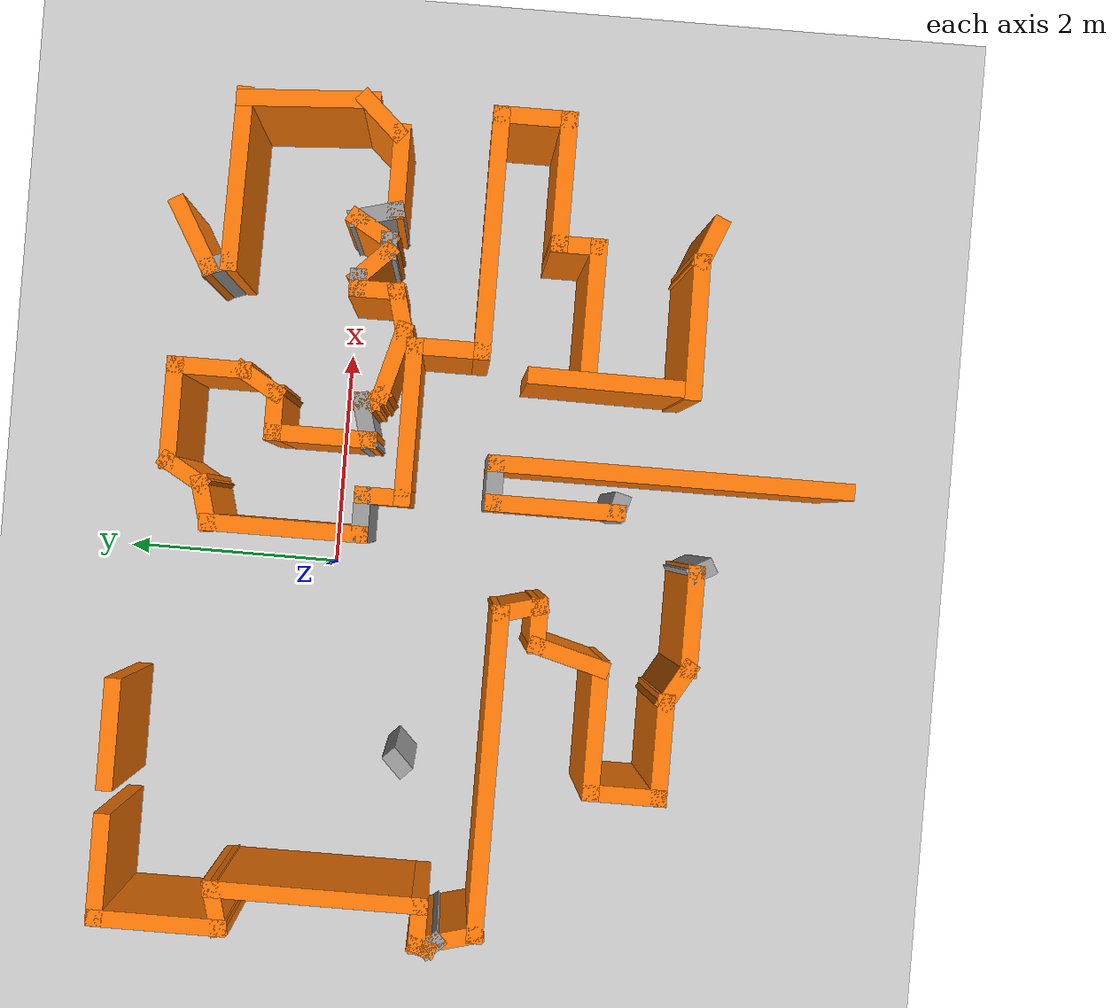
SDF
<sdf version="1.7">
 <world name="default">
  <model name="ground_plane">
   <static>1</static>
   <link name="link">
    <collision name="collision">
     <geometry><plane><normal>0 0 1</normal><size>100 100</size></plane></geometry>
     <surface>
      <contact><collide_bitmask>65535</collide_bitmask></contact>
      <friction><ode><mu>100</mu><mu2>50</mu2></ode></friction>
     </surface>
    </collision>
    <visual name="visual">
     <cast_shadows>0</cast_shadows>
     <geometry><plane><normal>0 0 1</normal><size>100 100</size></plane></geometry>
     <material>
      <script><uri>file://media/materials/scripts/gazebo.material</uri><name>Gazebo/Grey</name></script>
     </material>
    </visual>
   </link>
  </model>
  <model name="map_4">
   <pose>0.04124 -0.27835 0 0 -0 0</pose>
   <link name="Wall_104">
    <collision name="Wall_104_Collision">
     <geometry><box><size>0.493604 0.15 2.5</size></box></geometry>
     <pose>0 0 1.25 0 -0 0</pose>
    </collision>
    <visual name="Wall_104_Visual">
     <pose>0 0 1.25 0 -0 0</pose>
     <geometry><box><size>0.493604 0.15 2.5</size></box></geometry>
     <material>
      <script><uri>file://media/materials/scripts/gazebo.material</uri><name>Gazebo/Grey</name></script>
      <ambient>0.996078 0.47451 0.0196078 1</ambient>
     </material>
     <meta><layer>0</layer></meta>
    </visual>
    <pose>3.06994 -2.89171 0 0 -0 2.75556</pose>
   </link>
   <link name="Wall_105">
    <collision name="Wall_105_Collision">
     <geometry><box><size>1.29573 0.15 2.5</size></box></geometry>
     <pose>0 0 1.25 0 -0 0</pose>
    </collision>
    <visual name="Wall_105_Visual">
     <pose>0 0 1.25 0 -0 0</pose>
     <geometry><box><size>1.29573 0.15 2.5</size></box></geometry>
     <material>
      <script><uri>file://media/materials/scripts/gazebo.material</uri><name>Gazebo/Grey</name></script>
      <ambient>0.996078 0.47451 0.0196078 1</ambient>
     </material>
     <meta><layer>0</layer></meta>
    </visual>
    <pose>2.32276 -2.83463 0 0 -0 -3.12832</pose>
   </link>
   <link name="Wall_106">
    <collision name="Wall_106_Collision">
     <geometry><box><size>1.54571 0.15 2.5</size></box></geometry>
     <pose>0 0 1.25 0 -0 0</pose>
    </collision>
    <visual name="Wall_106_Visual">
     <pose>0 0 1.25 0 -0 0</pose>
     <geometry><box><size>1.54571 0.15 2.5</size></box></geometry>
     <material>
      <script><uri>file://media/materials/scripts/gazebo.material</uri><name>Gazebo/Grey</name></script>
      <ambient>0.996078 0.47451 0.0196078 1</ambient>
     </material>
     <meta><layer>0</layer></meta>
    </visual>
    <pose>1.77276 -2.14442 0 0 -0 1.5599</pose>
   </link>
   <link name="Wall_108">
    <collision name="Wall_108_Collision">
     <geometry><box><size>1.25 0.15 2.5</size></box></geometry>
     <pose>0 0 1.25 0 -0 0</pose>
    </collision>
    <visual name="Wall_108_Visual">
     <pose>0 0 1.25 0 -0 0</pose>
     <geometry><box><size>1.25 0.15 2.5</size></box></geometry>
     <material>
      <script><uri>file://media/materials/scripts/gazebo.material</uri><name>Gazebo/Grey</name></script>
      <ambient>0.996078 0.47451 0.0196078 1</ambient>
     </material>
     <meta><layer>0</layer></meta>
    </visual>
    <pose>2.40475 -1.90642 0 0 -0 0</pose>
   </link>
   <link name="Wall_109">
    <collision name="Wall_109_Collision">
     <geometry><box><size>0.5 0.15 2.5</size></box></geometry>
     <pose>0 0 1.25 0 -0 0</pose>
    </collision>
    <visual name="Wall_109_Visual">
     <pose>0 0 1.25 0 -0 0</pose>
     <geometry><box><size>0.5 0.15 2.5</size></box></geometry>
     <material>
      <script><uri>file://media/materials/scripts/gazebo.material</uri><name>Gazebo/Grey</name></script>
      <ambient>0.996078 0.47451 0.0196078 1</ambient>
     </material>
     <meta><layer>0</layer></meta>
    </visual>
    <pose>2.95475 -1.73142 0 0 -0 1.5708</pose>
   </link>
   <link name="Wall_110">
    <collision name="Wall_110_Collision">
     <geometry><box><size>1.25 0.15 2.5</size></box></geometry>
     <pose>0 0 1.25 0 -0 0</pose>
    </collision>
    <visual name="Wall_110_Visual">
     <pose>0 0 1.25 0 -0 0</pose>
     <geometry><box><size>1.25 0.15 2.5</size></box></geometry>
     <material>
      <script><uri>file://media/materials/scripts/gazebo.material</uri><name>Gazebo/Grey</name></script>
      <ambient>0.996078 0.47451 0.0196078 1</ambient>
     </material>
     <meta><layer>0</layer></meta>
    </visual>
    <pose>3.50475 -1.55642 0 0 -0 0</pose>
   </link>
   <link name="Wall_111">
    <collision name="Wall_111_Collision">
     <geometry><box><size>0.75 0.15 2.5</size></box></geometry>
     <pose>0 0 1.25 0 -0 0</pose>
    </collision>
    <visual name="Wall_111_Visual">
     <pose>0 0 1.25 0 -0 0</pose>
     <geometry><box><size>0.75 0.15 2.5</size></box></geometry>
     <material>
      <script><uri>file://media/materials/scripts/gazebo.material</uri><name>Gazebo/Grey</name></script>
      <ambient>0.996078 0.47451 0.0196078 1</ambient>
     </material>
     <meta><layer>0</layer></meta>
    </visual>
    <pose>4.05475 -1.25642 0 0 -0 1.5708</pose>
   </link>
   <link name="Wall_112">
    <collision name="Wall_112_Collision">
     <geometry><box><size>2.25 0.15 2.5</size></box></geometry>
     <pose>0 0 1.25 0 -0 0</pose>
    </collision>
    <visual name="Wall_112_Visual">
     <pose>0 0 1.25 0 -0 0</pose>
     <geometry><box><size>2.25 0.15 2.5</size></box></geometry>
     <material>
      <script><uri>file://media/materials/scripts/gazebo.material</uri><name>Gazebo/Grey</name></script>
      <ambient>0.996078 0.47451 0.0196078 1</ambient>
     </material>
     <meta><layer>0</layer></meta>
    </visual>
    <pose>3.00475 -0.956422 0 0 -0 3.14159</pose>
   </link>
   <link name="Wall_114">
    <collision name="Wall_114_Collision">
     <geometry><box><size>0.75 0.15 2.5</size></box></geometry>
     <pose>0 0 1.25 0 -0 0</pose>
    </collision>
    <visual name="Wall_114_Visual">
     <pose>0 0 1.25 0 -0 0</pose>
     <geometry><box><size>0.75 0.15 2.5</size></box></geometry>
     <material>
      <script><uri>file://media/materials/scripts/gazebo.material</uri><name>Gazebo/Grey</name></script>
      <ambient>0.996078 0.47451 0.0196078 1</ambient>
     </material>
     <meta><layer>0</layer></meta>
    </visual>
    <pose>1.95475 -0.656423 0 0 -0 1.5708</pose>
   </link>
   <link name="Wall_115">
    <collision name="Wall_115_Collision">
     <geometry><box><size>1.5 0.15 2.5</size></box></geometry>
     <pose>0 0 1.25 0 -0 0</pose>
    </collision>
    <visual name="Wall_115_Visual">
     <pose>0 0 1.25 0 -0 0</pose>
     <geometry><box><size>1.5 0.15 2.5</size></box></geometry>
     <material>
      <script><uri>file://media/materials/scripts/gazebo.material</uri><name>Gazebo/Grey</name></script>
      <ambient>0.996078 0.47451 0.0196078 1</ambient>
     </material>
     <meta><layer>0</layer></meta>
    </visual>
    <pose>1.27975 -0.356422 0 0 -0 3.14159</pose>
   </link>
   <link name="Wall_116">
    <collision name="Wall_116_Collision">
     <geometry><box><size>0.5 0.15 2.5</size></box></geometry>
     <pose>0 0 1.25 0 -0 0</pose>
    </collision>
    <visual name="Wall_116_Visual">
     <pose>0 0 1.25 0 -0 0</pose>
     <geometry><box><size>0.5 0.15 2.5</size></box></geometry>
     <material>
      <script><uri>file://media/materials/scripts/gazebo.material</uri><name>Gazebo/Grey</name></script>
      <ambient>0.996078 0.47451 0.0196078 1</ambient>
     </material>
     <meta><layer>0</layer></meta>
    </visual>
    <pose>0.604748 -0.181422 0 0 -0 1.5708</pose>
   </link>
   <link name="Wall_117">
    <collision name="Wall_117_Collision">
     <geometry><box><size>0.5 0.15 2.5</size></box></geometry>
     <pose>0 0 1.25 0 -0 0</pose>
    </collision>
    <visual name="Wall_117_Visual">
     <pose>0 0 1.25 0 -0 0</pose>
     <geometry><box><size>0.5 0.15 2.5</size></box></geometry>
     <material>
      <script><uri>file://media/materials/scripts/gazebo.material</uri><name>Gazebo/Grey</name></script>
      <ambient>1 1 1 1</ambient>
     </material>
     <meta><layer>0</layer></meta>
    </visual>
    <pose>0.429748 -0.006423 0 0 -0 3.14159</pose>
   </link>
   <link name="Wall_118">
    <collision name="Wall_118_Collision">
     <geometry><box><size>1.5 0.15 2.5</size></box></geometry>
     <pose>0 0 1.25 0 -0 0</pose>
    </collision>
    <visual name="Wall_118_Visual">
     <pose>0 0 1.25 0 -0 0</pose>
     <geometry><box><size>1.5 0.15 2.5</size></box></geometry>
     <material>
      <script><uri>file://media/materials/scripts/gazebo.material</uri><name>Gazebo/Grey</name></script>
      <ambient>0.996078 0.47451 0.0196078 1</ambient>
     </material>
     <meta><layer>0</layer></meta>
    </visual>
    <pose>0.254748 0.668578 0 0 -0 1.5708</pose>
   </link>
   <link name="Wall_119">
    <collision name="Wall_119_Collision">
     <geometry><box><size>0.5 0.15 2.5</size></box></geometry>
     <pose>0 0 1.25 0 -0 0</pose>
    </collision>
    <visual name="Wall_119_Visual">
     <pose>0 0 1.25 0 -0 0</pose>
     <geometry><box><size>0.5 0.15 2.5</size></box></geometry>
     <material>
      <script><uri>file://media/materials/scripts/gazebo.material</uri><name>Gazebo/Grey</name></script>
      <ambient>0.996078 0.47451 0.0196078 1</ambient>
     </material>
     <meta><layer>0</layer></meta>
    </visual>
    <pose>0.423785 1.38887 0 0 -0 0.261799</pose>
   </link>
   <link name="Wall_120">
    <collision name="Wall_120_Collision">
     <geometry><box><size>0.5 0.15 2.5</size></box></geometry>
     <pose>0 0 1.25 0 -0 0</pose>
    </collision>
    <visual name="Wall_120_Visual">
     <pose>0 0 1.25 0 -0 0</pose>
     <geometry><box><size>0.5 0.15 2.5</size></box></geometry>
     <material>
      <script><uri>file://media/materials/scripts/gazebo.material</uri><name>Gazebo/Grey</name></script>
      <ambient>0.996078 0.47451 0.0196078 1</ambient>
     </material>
     <meta><layer>0</layer></meta>
    </visual>
    <pose>0.680322 1.58572 0 0 -0 1.0472</pose>
   </link>
   <link name="Wall_121">
    <collision name="Wall_121_Collision">
     <geometry><box><size>1 0.15 2.5</size></box></geometry>
     <pose>0 0 1.25 0 -0 0</pose>
    </collision>
    <visual name="Wall_121_Visual">
     <pose>0 0 1.25 0 -0 0</pose>
     <geometry><box><size>1 0.15 2.5</size></box></geometry>
     <material>
      <script><uri>file://media/materials/scripts/gazebo.material</uri><name>Gazebo/Grey</name></script>
      <ambient>0.996078 0.47451 0.0196078 1</ambient>
     </material>
     <meta><layer>0</layer></meta>
    </visual>
    <pose>1.19282 1.73727 0 0 -0 0</pose>
   </link>
   <link name="Wall_122">
    <collision name="Wall_122_Collision">
     <geometry><box><size>0.75 0.15 2.5</size></box></geometry>
     <pose>0 0 1.25 0 -0 0</pose>
    </collision>
    <visual name="Wall_122_Visual">
     <pose>0 0 1.25 0 -0 0</pose>
     <geometry><box><size>0.75 0.15 2.5</size></box></geometry>
     <material>
      <script><uri>file://media/materials/scripts/gazebo.material</uri><name>Gazebo/Grey</name></script>
      <ambient>0.996078 0.47451 0.0196078 1</ambient>
     </material>
     <meta><layer>0</layer></meta>
    </visual>
    <pose>1.61782 1.43727 0 0 -0 -1.5708</pose>
   </link>
   <link name="Wall_123">
    <collision name="Wall_123_Collision">
     <geometry><box><size>0.5 0.15 2.5</size></box></geometry>
     <pose>0 0 1.25 0 -0 0</pose>
    </collision>
    <visual name="Wall_123_Visual">
     <pose>0 0 1.25 0 -0 0</pose>
     <geometry><box><size>0.5 0.15 2.5</size></box></geometry>
     <material>
      <script><uri>file://media/materials/scripts/gazebo.material</uri><name>Gazebo/Grey</name></script>
      <ambient>0.996078 0.47451 0.0196078 1</ambient>
     </material>
     <meta><layer>0</layer></meta>
    </visual>
    <pose>1.53032 0.985719 0 0 -0 -2.0944</pose>
   </link>
   <link name="Wall_124">
    <collision name="Wall_124_Collision">
     <geometry><box><size>0.5 0.15 2.5</size></box></geometry>
     <pose>0 0 1.25 0 -0 0</pose>
    </collision>
    <visual name="Wall_124_Visual">
     <pose>0 0 1.25 0 -0 0</pose>
     <geometry><box><size>0.5 0.15 2.5</size></box></geometry>
     <material>
      <script><uri>file://media/materials/scripts/gazebo.material</uri><name>Gazebo/Grey</name></script>
      <ambient>0.996078 0.47451 0.0196078 1</ambient>
     </material>
     <meta><layer>0</layer></meta>
    </visual>
    <pose>1.26782 0.834164 0 0 -0 3.14159</pose>
   </link>
   <link name="Wall_125">
    <collision name="Wall_125_Collision">
     <geometry><box><size>1 0.15 2.5</size></box></geometry>
     <pose>0 0 1.25 0 -0 0</pose>
    </collision>
    <visual name="Wall_125_Visual">
     <pose>0 0 1.25 0 -0 0</pose>
     <geometry><box><size>1 0.15 2.5</size></box></geometry>
     <material>
      <script><uri>file://media/materials/scripts/gazebo.material</uri><name>Gazebo/Grey</name></script>
      <ambient>0.996078 0.47451 0.0196078 1</ambient>
     </material>
     <meta><layer>0</layer></meta>
    </visual>
    <pose>1.09282 0.409164 0 0 -0 -1.5708</pose>
   </link>
   <link name="Wall_126">
    <collision name="Wall_126_Collision">
     <geometry><box><size>0.5 0.15 2.5</size></box></geometry>
     <pose>0 0 1.25 0 -0 0</pose>
    </collision>
    <visual name="Wall_126_Visual">
     <pose>0 0 1.25 0 -0 0</pose>
     <geometry><box><size>0.5 0.15 2.5</size></box></geometry>
     <material>
      <script><uri>file://media/materials/scripts/gazebo.material</uri><name>Gazebo/Grey</name></script>
      <ambient>1 1 1 1</ambient>
     </material>
     <meta><layer>0</layer></meta>
    </visual>
    <pose>1.26186 0.029458 0 0 -0 0.261799</pose>
   </link>
   <link name="Wall_129">
    <collision name="Wall_129_Collision">
     <geometry><box><size>0.25 0.15 2.5</size></box></geometry>
     <pose>0 0 1.25 0 -0 0</pose>
    </collision>
    <visual name="Wall_129_Visual">
     <pose>0 0 1.25 0 -0 0</pose>
     <geometry><box><size>0.25 0.15 2.5</size></box></geometry>
     <material>
      <script><uri>file://media/materials/scripts/gazebo.material</uri><name>Gazebo/Grey</name></script>
      <ambient>0.996078 0.47451 0.0196078 1</ambient>
     </material>
     <meta><layer>0</layer></meta>
    </visual>
    <pose>1.4309 0.024751 0 0 -0 -1.5708</pose>
   </link>
   <link name="Wall_130">
    <collision name="Wall_130_Collision">
     <geometry><box><size>0.25 0.15 2.5</size></box></geometry>
     <pose>0 0 1.25 0 -0 0</pose>
    </collision>
    <visual name="Wall_130_Visual">
     <pose>0 0 1.25 0 -0 0</pose>
     <geometry><box><size>0.25 0.15 2.5</size></box></geometry>
     <material>
      <script><uri>file://media/materials/scripts/gazebo.material</uri><name>Gazebo/Grey</name></script>
      <ambient>0.996078 0.47451 0.0196078 1</ambient>
     </material>
     <meta><layer>0</layer></meta>
    </visual>
    <pose>1.46625 -0.060605 0 0 -0 -0.785398</pose>
   </link>
   <link name="Wall_131">
    <collision name="Wall_131_Collision">
     <geometry><box><size>0.75 0.15 2.5</size></box></geometry>
     <pose>0 0 1.25 0 -0 0</pose>
    </collision>
    <visual name="Wall_131_Visual">
     <pose>0 0 1.25 0 -0 0</pose>
     <geometry><box><size>0.75 0.15 2.5</size></box></geometry>
     <material>
      <script><uri>file://media/materials/scripts/gazebo.material</uri><name>Gazebo/Grey</name></script>
      <ambient>0.996078 0.47451 0.0196078 1</ambient>
     </material>
     <meta><layer>0</layer></meta>
    </visual>
    <pose>1.79138 -0.173606 0 0 -0 -0.261799</pose>
   </link>
   <link name="Wall_132">
    <collision name="Wall_132_Collision">
     <geometry><box><size>0.5 0.15 2.5</size></box></geometry>
     <pose>0 0 1.25 0 -0 0</pose>
    </collision>
    <visual name="Wall_132_Visual">
     <pose>0 0 1.25 0 -0 0</pose>
     <geometry><box><size>0.5 0.15 2.5</size></box></geometry>
     <material>
      <script><uri>file://media/materials/scripts/gazebo.material</uri><name>Gazebo/Grey</name></script>
      <ambient>0.996078 0.47451 0.0196078 1</ambient>
     </material>
     <meta><layer>0</layer></meta>
    </visual>
    <pose>2.2502 -0.205958 0 0 -0 0.261799</pose>
   </link>
   <link name="Wall_133">
    <collision name="Wall_133_Collision">
     <geometry><box><size>0.5 0.15 2.5</size></box></geometry>
     <pose>0 0 1.25 0 -0 0</pose>
    </collision>
    <visual name="Wall_133_Visual">
     <pose>0 0 1.25 0 -0 0</pose>
     <geometry><box><size>0.5 0.15 2.5</size></box></geometry>
     <material>
      <script><uri>file://media/materials/scripts/gazebo.material</uri><name>Gazebo/Grey</name></script>
      <ambient>0.996078 0.47451 0.0196078 1</ambient>
     </material>
     <meta><layer>0</layer></meta>
    </visual>
    <pose>2.41924 0.014336 0 0 -0 1.5708</pose>
   </link>
   <link name="Wall_134">
    <collision name="Wall_134_Collision">
     <geometry><box><size>0.25 0.15 2.5</size></box></geometry>
     <pose>0 0 1.25 0 -0 0</pose>
    </collision>
    <visual name="Wall_134_Visual">
     <pose>0 0 1.25 0 -0 0</pose>
     <geometry><box><size>0.25 0.15 2.5</size></box></geometry>
     <material>
      <script><uri>file://media/materials/scripts/gazebo.material</uri><name>Gazebo/Grey</name></script>
      <ambient>1 1 1 1</ambient>
     </material>
     <meta><layer>0</layer></meta>
    </visual>
    <pose>2.46924 0.189335 0 0 -0 0</pose>
   </link>
   <link name="Wall_135">
    <collision name="Wall_135_Collision">
     <geometry><box><size>0.5 0.15 2.5</size></box></geometry>
     <pose>0 0 1.25 0 -0 0</pose>
    </collision>
    <visual name="Wall_135_Visual">
     <pose>0 0 1.25 0 -0 0</pose>
     <geometry><box><size>0.5 0.15 2.5</size></box></geometry>
     <material>
      <script><uri>file://media/materials/scripts/gazebo.material</uri><name>Gazebo/Grey</name></script>
      <ambient>0.996078 0.47451 0.0196078 1</ambient>
     </material>
     <meta><layer>0</layer></meta>
    </visual>
    <pose>2.64298 0.065592 0 0 -0 -0.785398</pose>
   </link>
   <link name="Wall_136">
    <collision name="Wall_136_Collision">
     <geometry><box><size>0.25 0.15 2.5</size></box></geometry>
     <pose>0 0 1.25 0 -0 0</pose>
    </collision>
    <visual name="Wall_136_Visual">
     <pose>0 0 1.25 0 -0 0</pose>
     <geometry><box><size>0.25 0.15 2.5</size></box></geometry>
     <material>
      <script><uri>file://media/materials/scripts/gazebo.material</uri><name>Gazebo/Grey</name></script>
      <ambient>1 1 1 1</ambient>
     </material>
     <meta><layer>0</layer></meta>
    </visual>
    <pose>2.81672 -0.058152 0 0 -0 0</pose>
   </link>
   <link name="Wall_137">
    <collision name="Wall_137_Collision">
     <geometry><box><size>0.5 0.15 2.5</size></box></geometry>
     <pose>0 0 1.25 0 -0 0</pose>
    </collision>
    <visual name="Wall_137_Visual">
     <pose>0 0 1.25 0 -0 0</pose>
     <geometry><box><size>0.5 0.15 2.5</size></box></geometry>
     <material>
      <script><uri>file://media/materials/scripts/gazebo.material</uri><name>Gazebo/Grey</name></script>
      <ambient>0.996078 0.47451 0.0196078 1</ambient>
     </material>
     <meta><layer>0</layer></meta>
    </visual>
    <pose>2.95422 0.093402 0 0 -0 1.0472</pose>
   </link>
   <link name="Wall_138">
    <collision name="Wall_138_Collision">
     <geometry><box><size>0.5 0.15 2.5</size></box></geometry>
     <pose>0 0 1.25 0 -0 0</pose>
    </collision>
    <visual name="Wall_138_Visual">
     <pose>0 0 1.25 0 -0 0</pose>
     <geometry><box><size>0.5 0.15 2.5</size></box></geometry>
     <material>
      <script><uri>file://media/materials/scripts/gazebo.material</uri><name>Gazebo/Grey</name></script>
      <ambient>1 1 1 1</ambient>
     </material>
     <meta><layer>0</layer></meta>
    </visual>
    <pose>3.08702 0.07592 0 0 -0 -1.309</pose>
   </link>
   <link name="Wall_139">
    <collision name="Wall_139_Collision">
     <geometry><box><size>0.842522 0.15 2.5</size></box></geometry>
     <pose>0 0 1.25 0 -0 0</pose>
    </collision>
    <visual name="Wall_139_Visual">
     <pose>0 0 1.25 0 -0 0</pose>
     <geometry><box><size>0.842522 0.15 2.5</size></box></geometry>
     <material>
      <script><uri>file://media/materials/scripts/gazebo.material</uri><name>Gazebo/Grey</name></script>
      <ambient>0.996078 0.47451 0.0196078 1</ambient>
     </material>
     <meta><layer>0</layer></meta>
    </visual>
    <pose>3.47857 -0.093117 0 0 -0 0</pose>
   </link>
   <link name="Wall_140">
    <collision name="Wall_140_Collision">
     <geometry><box><size>0.53772 0.15 2.5</size></box></geometry>
     <pose>0 0 1.25 0 -0 0</pose>
    </collision>
    <visual name="Wall_140_Visual">
     <pose>0 0 1.25 0 -0 0</pose>
     <geometry><box><size>0.53772 0.15 2.5</size></box></geometry>
     <material>
      <script><uri>file://media/materials/scripts/gazebo.material</uri><name>Gazebo/Grey</name></script>
      <ambient>0.996078 0.47451 0.0196078 1</ambient>
     </material>
     <meta><layer>0</layer></meta>
    </visual>
    <pose>3.95601 0.095884 0 0 -0 0.827595</pose>
   </link>
   <link name="Wall_141">
    <collision name="Wall_141_Collision">
     <geometry><box><size>1.27527 0.15 2.5</size></box></geometry>
     <pose>0 0 1.25 0 -0 0</pose>
    </collision>
    <visual name="Wall_141_Visual">
     <pose>0 0 1.25 0 -0 0</pose>
     <geometry><box><size>1.27527 0.15 2.5</size></box></geometry>
     <material>
      <script><uri>file://media/materials/scripts/gazebo.material</uri><name>Gazebo/Grey</name></script>
      <ambient>0.996078 0.47451 0.0196078 1</ambient>
     </material>
     <meta><layer>0</layer></meta>
    </visual>
    <pose>4.05249 0.753929 0 0 -0 1.6325</pose>
   </link>
   <link name="Wall_142">
    <collision name="Wall_142_Collision">
     <geometry><box><size>1.63453 0.15 2.5</size></box></geometry>
     <pose>0 0 1.25 0 -0 0</pose>
    </collision>
    <visual name="Wall_142_Visual">
     <pose>0 0 1.25 0 -0 0</pose>
     <geometry><box><size>1.63453 0.15 2.5</size></box></geometry>
     <material>
      <script><uri>file://media/materials/scripts/gazebo.material</uri><name>Gazebo/Grey</name></script>
      <ambient>0.996078 0.47451 0.0196078 1</ambient>
     </material>
     <meta><layer>0</layer></meta>
    </visual>
    <pose>3.29875 1.32706 0 0 -0 3.12601</pose>
   </link>
   <link name="Wall_143">
    <collision name="Wall_143_Collision">
     <geometry><box><size>0.29196 0.15 2.5</size></box></geometry>
     <pose>0 0 1.25 0 -0 0</pose>
    </collision>
    <visual name="Wall_143_Visual">
     <pose>0 0 1.25 0 -0 0</pose>
     <geometry><box><size>0.29196 0.15 2.5</size></box></geometry>
     <material>
      <script><uri>file://media/materials/scripts/gazebo.material</uri><name>Gazebo/Grey</name></script>
      <ambient>1 1 1 1</ambient>
     </material>
     <meta><layer>0</layer></meta>
    </visual>
    <pose>2.53157 1.45132 0 0 -0 1.93073</pose>
   </link>
   <link name="Wall_144">
    <collision name="Wall_144_Collision">
     <geometry><box><size>0.75 0.15 2.5</size></box></geometry>
     <pose>0 0 1.25 0 -0 0</pose>
    </collision>
    <visual name="Wall_144_Visual">
     <pose>0 0 1.25 0 -0 0</pose>
     <geometry><box><size>0.75 0.15 2.5</size></box></geometry>
     <material>
      <script><uri>file://media/materials/scripts/gazebo.material</uri><name>Gazebo/Grey</name></script>
      <ambient>0.996078 0.47451 0.0196078 1</ambient>
     </material>
     <meta><layer>0</layer></meta>
    </visual>
    <pose>2.76638 1.66775 0 0 -0 0.523599</pose>
   </link>
   <link name="Wall_182">
    <collision name="Wall_182_Collision">
     <geometry><box><size>0.25 0.15 2.5</size></box></geometry>
     <pose>0 0 1.25 0 -0 0</pose>
    </collision>
    <visual name="Wall_182_Visual">
     <pose>0 0 1.25 0 -0 0</pose>
     <geometry><box><size>0.25 0.15 2.5</size></box></geometry>
     <material>
      <script><uri>file://media/materials/scripts/gazebo.material</uri><name>Gazebo/Grey</name></script>
      <ambient>1 1 1 1</ambient>
     </material>
     <meta><layer>0</layer></meta>
    </visual>
    <pose>-1.73175 -0.506693 0 0 -0 -2.35619</pose>
   </link>
   <link name="Wall_34">
    <collision name="Wall_34_Collision">
     <geometry><box><size>1 0.15 2.5</size></box></geometry>
     <pose>0 0 1.25 0 -0 0</pose>
    </collision>
    <visual name="Wall_34_Visual">
     <pose>0 0 1.25 0 -0 0</pose>
     <geometry><box><size>1 0.15 2.5</size></box></geometry>
     <material>
      <script><uri>file://media/materials/scripts/gazebo.material</uri><name>Gazebo/Grey</name></script>
      <ambient>0.996078 0.47451 0.0196078 1</ambient>
     </material>
     <meta><layer>0</layer></meta>
    </visual>
    <pose>-1.6857 2.05561 0 0 -0 3.14159</pose>
   </link>
   <link name="Wall_38">
    <collision name="Wall_38_Collision">
     <geometry><box><size>1 0.15 2.5</size></box></geometry>
     <pose>0 0 1.25 0 -0 0</pose>
    </collision>
    <visual name="Wall_38_Visual">
     <pose>0 0 1.25 0 -0 0</pose>
     <geometry><box><size>1 0.15 2.5</size></box></geometry>
     <material>
      <script><uri>file://media/materials/scripts/gazebo.material</uri><name>Gazebo/Grey</name></script>
      <ambient>0.996078 0.47451 0.0196078 1</ambient>
     </material>
     <meta><layer>0</layer></meta>
    </visual>
    <pose>-2.8857 2.05561 0 0 -0 3.14159</pose>
   </link>
   <link name="Wall_43">
    <collision name="Wall_43_Collision">
     <geometry><box><size>1.25 0.15 2.5</size></box></geometry>
     <pose>0 0 1.25 0 -0 0</pose>
    </collision>
    <visual name="Wall_43_Visual">
     <pose>0 0 1.25 0 -0 0</pose>
     <geometry><box><size>1.25 0.15 2.5</size></box></geometry>
     <material>
      <script><uri>file://media/materials/scripts/gazebo.material</uri><name>Gazebo/Grey</name></script>
      <ambient>0.996078 0.47451 0.0196078 1</ambient>
     </material>
     <meta><layer>0</layer></meta>
    </visual>
    <pose>-3.3107 1.50561 0 0 -0 -1.5708</pose>
   </link>
   <link name="Wall_44">
    <collision name="Wall_44_Collision">
     <geometry><box><size>0.5 0.15 2.5</size></box></geometry>
     <pose>0 0 1.25 0 -0 0</pose>
    </collision>
    <visual name="Wall_44_Visual">
     <pose>0 0 1.25 0 -0 0</pose>
     <geometry><box><size>0.5 0.15 2.5</size></box></geometry>
     <material>
      <script><uri>file://media/materials/scripts/gazebo.material</uri><name>Gazebo/Grey</name></script>
      <ambient>0.996078 0.47451 0.0196078 1</ambient>
     </material>
     <meta><layer>0</layer></meta>
    </visual>
    <pose>-3.14166 1.0009 0 0 -0 0.261799</pose>
   </link>
   <link name="Wall_46">
    <collision name="Wall_46_Collision">
     <geometry><box><size>2 0.15 2.5</size></box></geometry>
     <pose>0 0 1.25 0 -0 0</pose>
    </collision>
    <visual name="Wall_46_Visual">
     <pose>0 0 1.25 0 -0 0</pose>
     <geometry><box><size>2 0.15 2.5</size></box></geometry>
     <material>
      <script><uri>file://media/materials/scripts/gazebo.material</uri><name>Gazebo/Grey</name></script>
      <ambient>0.996078 0.47451 0.0196078 1</ambient>
     </material>
     <meta><layer>0</layer></meta>
    </visual>
    <pose>-2.97262 0.121192 0 0 -0 -1.5708</pose>
   </link>
   <link name="Wall_47">
    <collision name="Wall_47_Collision">
     <geometry><box><size>0.5 0.15 2.5</size></box></geometry>
     <pose>0 0 1.25 0 -0 0</pose>
    </collision>
    <visual name="Wall_47_Visual">
     <pose>0 0 1.25 0 -0 0</pose>
     <geometry><box><size>0.5 0.15 2.5</size></box></geometry>
     <material>
      <script><uri>file://media/materials/scripts/gazebo.material</uri><name>Gazebo/Grey</name></script>
      <ambient>0.996078 0.47451 0.0196078 1</ambient>
     </material>
     <meta><layer>0</layer></meta>
    </visual>
    <pose>-3.14762 -0.803808 0 0 -0 3.14159</pose>
   </link>
   <link name="Wall_48">
    <collision name="Wall_48_Collision">
     <geometry><box><size>0.25 0.15 2.5</size></box></geometry>
     <pose>0 0 1.25 0 -0 0</pose>
    </collision>
    <visual name="Wall_48_Visual">
     <pose>0 0 1.25 0 -0 0</pose>
     <geometry><box><size>0.25 0.15 2.5</size></box></geometry>
     <material>
      <script><uri>file://media/materials/scripts/gazebo.material</uri><name>Gazebo/Grey</name></script>
      <ambient>0.996078 0.47451 0.0196078 1</ambient>
     </material>
     <meta><layer>0</layer></meta>
    </visual>
    <pose>-3.33556 -0.852104 0 0 -0 -1.8326</pose>
   </link>
   <link name="Wall_49">
    <collision name="Wall_49_Collision">
     <geometry><box><size>0.25 0.15 2.5</size></box></geometry>
     <pose>0 0 1.25 0 -0 0</pose>
    </collision>
    <visual name="Wall_49_Visual">
     <pose>0 0 1.25 0 -0 0</pose>
     <geometry><box><size>0.25 0.15 2.5</size></box></geometry>
     <material>
      <script><uri>file://media/materials/scripts/gazebo.material</uri><name>Gazebo/Grey</name></script>
      <ambient>1 1 1 1</ambient>
     </material>
     <meta><layer>0</layer></meta>
    </visual>
    <pose>-3.31315 -0.935756 0 0 -0 -0.785398</pose>
   </link>
   <link name="Wall_50">
    <collision name="Wall_50_Collision">
     <geometry><box><size>0.5 0.15 2.5</size></box></geometry>
     <pose>0 0 1.25 0 -0 0</pose>
    </collision>
    <visual name="Wall_50_Visual">
     <pose>0 0 1.25 0 -0 0</pose>
     <geometry><box><size>0.5 0.15 2.5</size></box></geometry>
     <material>
      <script><uri>file://media/materials/scripts/gazebo.material</uri><name>Gazebo/Grey</name></script>
      <ambient>0.996078 0.47451 0.0196078 1</ambient>
     </material>
     <meta><layer>0</layer></meta>
    </visual>
    <pose>-3.2325 -1.14015 0 0 -0 -1.309</pose>
   </link>
   <link name="Wall_51">
    <collision name="Wall_51_Collision">
     <geometry><box><size>3 0.15 2.5</size></box></geometry>
     <pose>0 0 1.25 0 -0 0</pose>
    </collision>
    <visual name="Wall_51_Visual">
     <pose>0 0 1.25 0 -0 0</pose>
     <geometry><box><size>3 0.15 2.5</size></box></geometry>
     <material>
      <script><uri>file://media/materials/scripts/gazebo.material</uri><name>Gazebo/Grey</name></script>
      <ambient>0.996078 0.47451 0.0196078 1</ambient>
     </material>
     <meta><layer>0</layer></meta>
    </visual>
    <pose>-1.76221 -1.30919 0 0 -0 0</pose>
   </link>
   <link name="Wall_52">
    <collision name="Wall_52_Collision">
     <geometry><box><size>0.5 0.15 2.5</size></box></geometry>
     <pose>0 0 1.25 0 -0 0</pose>
    </collision>
    <visual name="Wall_52_Visual">
     <pose>0 0 1.25 0 -0 0</pose>
     <geometry><box><size>0.5 0.15 2.5</size></box></geometry>
     <material>
      <script><uri>file://media/materials/scripts/gazebo.material</uri><name>Gazebo/Grey</name></script>
      <ambient>0.996078 0.47451 0.0196078 1</ambient>
     </material>
     <meta><layer>0</layer></meta>
    </visual>
    <pose>-0.291915 -1.47822 0 0 -0 -1.309</pose>
   </link>
   <link name="Wall_53">
    <collision name="Wall_53_Collision">
     <geometry><box><size>0.5 0.15 2.5</size></box></geometry>
     <pose>0 0 1.25 0 -0 0</pose>
    </collision>
    <visual name="Wall_53_Visual">
     <pose>0 0 1.25 0 -0 0</pose>
     <geometry><box><size>0.5 0.15 2.5</size></box></geometry>
     <material>
      <script><uri>file://media/materials/scripts/gazebo.material</uri><name>Gazebo/Grey</name></script>
      <ambient>0.996078 0.47451 0.0196078 1</ambient>
     </material>
     <meta><layer>0</layer></meta>
    </visual>
    <pose>-0.421622 -1.64726 0 0 -0 3.14159</pose>
   </link>
   <link name="Wall_54">
    <collision name="Wall_54_Collision">
     <geometry><box><size>0.75 0.15 2.5</size></box></geometry>
     <pose>0 0 1.25 0 -0 0</pose>
    </collision>
    <visual name="Wall_54_Visual">
     <pose>0 0 1.25 0 -0 0</pose>
     <geometry><box><size>0.75 0.15 2.5</size></box></geometry>
     <material>
      <script><uri>file://media/materials/scripts/gazebo.material</uri><name>Gazebo/Grey</name></script>
      <ambient>0.996078 0.47451 0.0196078 1</ambient>
     </material>
     <meta><layer>0</layer></meta>
    </visual>
    <pose>-0.674268 -1.93704 0 0 -0 -1.8326</pose>
   </link>
   <link name="Wall_55">
    <collision name="Wall_55_Collision">
     <geometry><box><size>1.25 0.15 2.5</size></box></geometry>
     <pose>0 0 1.25 0 -0 0</pose>
    </collision>
    <visual name="Wall_55_Visual">
     <pose>0 0 1.25 0 -0 0</pose>
     <geometry><box><size>1.25 0.15 2.5</size></box></geometry>
     <material>
      <script><uri>file://media/materials/scripts/gazebo.material</uri><name>Gazebo/Grey</name></script>
      <ambient>0.996078 0.47451 0.0196078 1</ambient>
     </material>
     <meta><layer>0</layer></meta>
    </visual>
    <pose>-1.30191 -2.22681 0 0 -0 3.14159</pose>
   </link>
   <link name="Wall_60">
    <collision name="Wall_60_Collision">
     <geometry><box><size>0.75 0.15 2.5</size></box></geometry>
     <pose>0 0 1.25 0 -0 0</pose>
    </collision>
    <visual name="Wall_60_Visual">
     <pose>0 0 1.25 0 -0 0</pose>
     <geometry><box><size>0.75 0.15 2.5</size></box></geometry>
     <material>
      <script><uri>file://media/materials/scripts/gazebo.material</uri><name>Gazebo/Grey</name></script>
      <ambient>0.996078 0.47451 0.0196078 1</ambient>
     </material>
     <meta><layer>0</layer></meta>
    </visual>
    <pose>-1.85191 -2.52682 0 0 -0 -1.5708</pose>
   </link>
   <link name="Wall_61">
    <collision name="Wall_61_Collision">
     <geometry><box><size>1 0.15 2.5</size></box></geometry>
     <pose>0 0 1.25 0 -0 0</pose>
    </collision>
    <visual name="Wall_61_Visual">
     <pose>0 0 1.25 0 -0 0</pose>
     <geometry><box><size>1 0.15 2.5</size></box></geometry>
     <material>
      <script><uri>file://media/materials/scripts/gazebo.material</uri><name>Gazebo/Grey</name></script>
      <ambient>0.996078 0.47451 0.0196078 1</ambient>
     </material>
     <meta><layer>0</layer></meta>
    </visual>
    <pose>-1.42691 -2.82681 0 0 -0 0</pose>
   </link>
   <link name="Wall_62">
    <collision name="Wall_62_Collision">
     <geometry><box><size>0.5 0.15 2.5</size></box></geometry>
     <pose>0 0 1.25 0 -0 0</pose>
    </collision>
    <visual name="Wall_62_Visual">
     <pose>0 0 1.25 0 -0 0</pose>
     <geometry><box><size>0.5 0.15 2.5</size></box></geometry>
     <material>
      <script><uri>file://media/materials/scripts/gazebo.material</uri><name>Gazebo/Grey</name></script>
      <ambient>0.996078 0.47451 0.0196078 1</ambient>
     </material>
     <meta><layer>0</layer></meta>
    </visual>
    <pose>-0.850359 -2.91431 0 0 -0 -0.523599</pose>
   </link>
   <link name="Wall_68">
    <collision name="Wall_68_Collision">
     <geometry><box><size>1 0.15 2.5</size></box></geometry>
     <pose>0 0 1.25 0 -0 0</pose>
    </collision>
    <visual name="Wall_68_Visual">
     <pose>0 0 1.25 0 -0 0</pose>
     <geometry><box><size>1 0.15 2.5</size></box></geometry>
     <material>
      <script><uri>file://media/materials/scripts/gazebo.material</uri><name>Gazebo/Grey</name></script>
      <ambient>0.996078 0.47451 0.0196078 1</ambient>
     </material>
     <meta><layer>0</layer></meta>
    </visual>
    <pose>-0.273804 -3.00182 0 0 -0 0</pose>
   </link>
   <link name="Wall_69">
    <collision name="Wall_69_Collision">
     <geometry><box><size>0.25 0.15 2.5</size></box></geometry>
     <pose>0 0 1.25 0 -0 0</pose>
    </collision>
    <visual name="Wall_69_Visual">
     <pose>0 0 1.25 0 -0 0</pose>
     <geometry><box><size>0.25 0.15 2.5</size></box></geometry>
     <material>
      <script><uri>file://media/materials/scripts/gazebo.material</uri><name>Gazebo/Grey</name></script>
      <ambient>1 1 1 1</ambient>
     </material>
     <meta><layer>0</layer></meta>
    </visual>
    <pose>0.176196 -3.04512 0 0 -0 -1.0472</pose>
   </link>
   <link name="Wall_76">
    <collision name="Wall_76_Collision">
     <geometry><box><size>0.25 0.15 2.5</size></box></geometry>
     <pose>0 0 1.25 0 -0 0</pose>
    </collision>
    <visual name="Wall_76_Visual">
     <pose>0 0 1.25 0 -0 0</pose>
     <geometry><box><size>0.25 0.15 2.5</size></box></geometry>
     <material>
      <script><uri>file://media/materials/scripts/gazebo.material</uri><name>Gazebo/Grey</name></script>
      <ambient>1 1 1 1</ambient>
     </material>
     <meta><layer>0</layer></meta>
    </visual>
    <pose>0.677899 -2.27237 0 0 -0 2.87979</pose>
   </link>
   <link name="Wall_77">
    <collision name="Wall_77_Collision">
     <geometry><box><size>1.25 0.15 2.5</size></box></geometry>
     <pose>0 0 1.25 0 -0 0</pose>
    </collision>
    <visual name="Wall_77_Visual">
     <pose>0 0 1.25 0 -0 0</pose>
     <geometry><box><size>1.25 0.15 2.5</size></box></geometry>
     <material>
      <script><uri>file://media/materials/scripts/gazebo.material</uri><name>Gazebo/Grey</name></script>
      <ambient>0.996078 0.47451 0.0196078 1</ambient>
     </material>
     <meta><layer>0</layer></meta>
    </visual>
    <pose>0.629603 -1.70943 0 0 -0 1.5708</pose>
   </link>
   <link name="Wall_78">
    <collision name="Wall_78_Collision">
     <geometry><box><size>0.5 0.15 2.5</size></box></geometry>
     <pose>0 0 1.25 0 -0 0</pose>
    </collision>
    <visual name="Wall_78_Visual">
     <pose>0 0 1.25 0 -0 0</pose>
     <geometry><box><size>0.5 0.15 2.5</size></box></geometry>
     <material>
      <script><uri>file://media/materials/scripts/gazebo.material</uri><name>Gazebo/Grey</name></script>
      <ambient>1 1 1 1</ambient>
     </material>
     <meta><layer>0</layer></meta>
    </visual>
    <pose>0.804603 -1.15943 0 0 -0 0</pose>
   </link>
   <link name="Wall_79">
    <collision name="Wall_79_Collision">
     <geometry><box><size>3.25 0.15 2.5</size></box></geometry>
     <pose>0 0 1.25 0 -0 0</pose>
    </collision>
    <visual name="Wall_79_Visual">
     <pose>0 0 1.25 0 -0 0</pose>
     <geometry><box><size>3.25 0.15 2.5</size></box></geometry>
     <material>
      <script><uri>file://media/materials/scripts/gazebo.material</uri><name>Gazebo/Grey</name></script>
      <ambient>0.996078 0.47451 0.0196078 1</ambient>
     </material>
     <meta><layer>0</layer></meta>
    </visual>
    <pose>0.979603 -2.70943 0 0 -0 -1.5708</pose>
   </link>
   <static>1</static>
  </model>
 </world>
</sdf>
